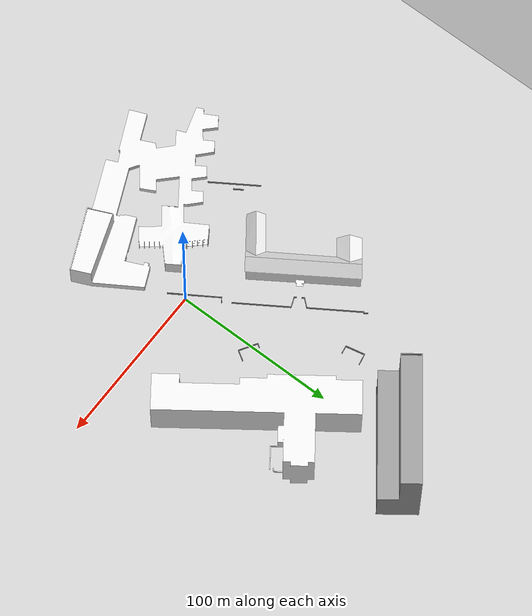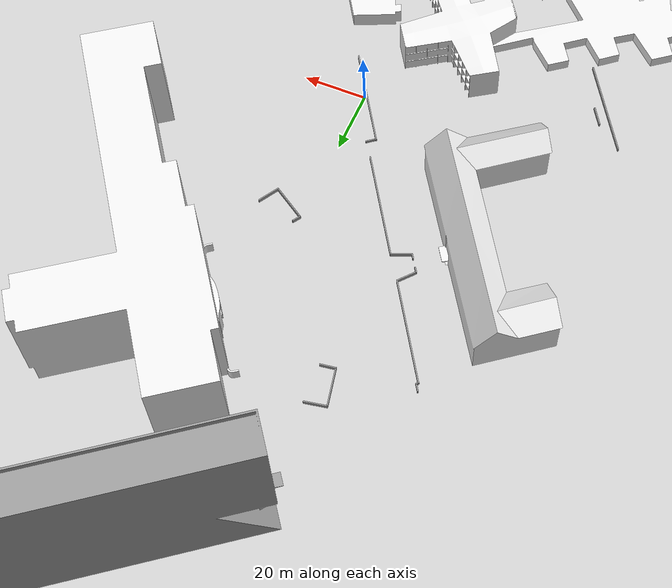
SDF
<sdf version="1.7">
 <world name="default">
  <gravity>0 0 -9.8</gravity>
  <magnetic_field>6e-06 2.3e-05 -4.2e-05</magnetic_field>
  <atmosphere type="adiabatic"/>
  <physics type="ode">
   <max_step_size>0.001</max_step_size>
   <real_time_factor>1</real_time_factor>
   <real_time_update_rate>1000</real_time_update_rate>
  </physics>
  <scene><ambient>0.4 0.4 0.4 1</ambient><background>0.7 0.7 0.7 1</background><shadows>1</shadows></scene>
  <spherical_coordinates>
   <surface_model>EARTH_WGS84</surface_model>
   <latitude_deg>0</latitude_deg>
   <longitude_deg>0</longitude_deg>
   <elevation>0</elevation>
   <heading_deg>0</heading_deg>
  </spherical_coordinates>
  <light name="sun" type="directional">
   <pose>0 0 10 0 -0 0</pose>
   <diffuse>0.8 0.8 0.8 1</diffuse>
   <specular>0.2 0.2 0.2 1</specular>
   <attenuation>
    <range>1000</range>
    <constant>0.9</constant>
    <linear>0.01</linear>
    <quadratic>0.001</quadratic>
   </attenuation>
   <direction>-0.5 0.1 -0.9</direction>
   <spot><inner_angle>0</inner_angle><outer_angle>0</outer_angle><falloff>0</falloff></spot>
  </light>
  <scene><shadows>0</shadows><ambient>0.4 0.4 0.4 1</ambient><background>0.7 0.7 0.7 1</background></scene>
  <model name="BT21">
   <link name="link_0">
    <inertial>
     <mass>1</mass>
     <inertia>
      <ixx>0.166667</ixx>
      <ixy>0</ixy>
      <ixz>0</ixz>
      <iyy>0.166667</iyy>
      <iyz>0</iyz>
      <izz>0.166667</izz>
     </inertia>
    </inertial>
    <pose>31.9855 76.1739 6.67521 0 0 -0.939198</pose>
    <visual name="visual">
     <geometry>
      <mesh>
       <uri>/home/ipp/ownCloud/Documents/Blindenhund 4.0/20_Entwicklung/90_Gazebo_Sim/BT21.dae</uri>
       <scale>1 1 1</scale>
      </mesh>
     </geometry>
     <material>
      <lighting>1</lighting>
      <script><uri>file://media/materials/scripts/gazebo.material</uri><name>Gazebo/White</name></script>
      <shader type="pixel"><normal_map>__default__</normal_map></shader>
      <ambient>1 1 1 1</ambient>
      <diffuse>0.7 0.7 0.7 1</diffuse>
      <specular>0.01 0.01 0.01 1</specular>
      <emissive>0 0 0 1</emissive>
     </material>
    </visual>
    <collision name="collision">
     <geometry>
      <mesh>
       <uri>/home/ipp/ownCloud/Documents/Blindenhund 4.0/20_Entwicklung/90_Gazebo_Sim/BT21.dae</uri>
       <scale>1 1 1</scale>
      </mesh>
     </geometry>
     <surface>
      <friction>
       <ode><mu>1</mu><mu2>1</mu2><fdir1>0 0 0</fdir1><slip1>0</slip1><slip2>0</slip2></ode>
       <torsional>
        <coefficient>1</coefficient>
        <patch_radius>0</patch_radius>
        <surface_radius>0</surface_radius>
        <use_patch_radius>1</use_patch_radius>
        <ode><slip>0</slip></ode>
       </torsional>
      </friction>
      <bounce><restitution_coefficient>0</restitution_coefficient><threshold>1e+06</threshold></bounce>
      <contact>
       <collide_without_contact>0</collide_without_contact>
       <collide_without_contact_bitmask>1</collide_without_contact_bitmask>
       <collide_bitmask>1</collide_bitmask>
       <ode>
        <soft_cfm>0</soft_cfm>
        <soft_erp>0.2</soft_erp>
        <kp>1e+13</kp>
        <kd>1</kd>
        <max_vel>0.01</max_vel>
        <min_depth>0</min_depth>
       </ode>
       <bullet>
        <split_impulse>1</split_impulse>
        <split_impulse_penetration_threshold>-0.01</split_impulse_penetration_threshold>
        <soft_cfm>0</soft_cfm>
        <soft_erp>0.2</soft_erp>
        <kp>1e+13</kp>
        <kd>1</kd>
       </bullet>
      </contact>
     </surface>
    </collision>
   </link>
   <static>1</static>
  </model>
  <model name="BT5">
   <link name="link_0">
    <inertial>
     <mass>1</mass>
     <inertia>
      <ixx>0.166667</ixx>
      <ixy>0</ixy>
      <ixz>0</ixz>
      <iyy>0.166667</iyy>
      <iyz>0</iyz>
      <izz>0.166667</izz>
     </inertia>
    </inertial>
    <visual name="visual">
     <geometry>
      <mesh>
       <uri>/home/ipp/ownCloud/Documents/Blindenhund 4.0/20_Entwicklung/90_Gazebo_Sim/BT5.dae</uri>
       <scale>1 1 1</scale>
      </mesh>
     </geometry>
     <material>
      <lighting>1</lighting>
      <script><uri>file://media/materials/scripts/gazebo.material</uri><name>Gazebo/Grey</name></script>
      <shader type="pixel"><normal_map>__default__</normal_map></shader>
      <ambient>1 1 1 1</ambient>
      <diffuse>0.7 0.7 0.7 1</diffuse>
      <specular>0.01 0.01 0.01 1</specular>
      <emissive>0 0 0 1</emissive>
     </material>
    </visual>
    <collision name="collision">
     <geometry>
      <mesh>
       <uri>/home/ipp/ownCloud/Documents/Blindenhund 4.0/20_Entwicklung/90_Gazebo_Sim/BT5.dae</uri>
       <scale>1 1 1</scale>
      </mesh>
     </geometry>
     <surface>
      <friction>
       <ode><mu>1</mu><mu2>1</mu2><fdir1>0 0 0</fdir1><slip1>0</slip1><slip2>0</slip2></ode>
       <torsional>
        <coefficient>1</coefficient>
        <patch_radius>0</patch_radius>
        <surface_radius>0</surface_radius>
        <use_patch_radius>1</use_patch_radius>
        <ode><slip>0</slip></ode>
       </torsional>
      </friction>
      <bounce><restitution_coefficient>0</restitution_coefficient><threshold>1e+06</threshold></bounce>
      <contact>
       <collide_without_contact>0</collide_without_contact>
       <collide_without_contact_bitmask>1</collide_without_contact_bitmask>
       <collide_bitmask>1</collide_bitmask>
       <ode>
        <soft_cfm>0</soft_cfm>
        <soft_erp>0.2</soft_erp>
        <kp>1e+13</kp>
        <kd>1</kd>
        <max_vel>0.01</max_vel>
        <min_depth>0</min_depth>
       </ode>
       <bullet>
        <split_impulse>1</split_impulse>
        <split_impulse_penetration_threshold>-0.01</split_impulse_penetration_threshold>
        <soft_cfm>0</soft_cfm>
        <soft_erp>0.2</soft_erp>
        <kp>1e+13</kp>
        <kd>1</kd>
       </bullet>
      </contact>
     </surface>
    </collision>
   </link>
   <static>1</static>
   <pose>1.17466 152.922 6.3166 0 0 -0.92925</pose>
  </model>
  <model name="WS3">
   <link name="link_1">
    <inertial>
     <mass>1</mass>
     <inertia>
      <ixx>0.166667</ixx>
      <ixy>0</ixy>
      <ixz>0</ixz>
      <iyy>0.166667</iyy>
      <iyz>0</iyz>
      <izz>0.166667</izz>
     </inertia>
    </inertial>
    <visual name="visual">
     <geometry>
      <mesh>
       <uri>/home/ipp/ownCloud/Documents/Blindenhund 4.0/20_Entwicklung/90_Gazebo_Sim/WS3.dae</uri>
       <scale>1 1 1</scale>
      </mesh>
     </geometry>
     <material>
      <lighting>1</lighting>
      <script><uri>file://media/materials/scripts/gazebo.material</uri><name>Gazebo/White</name></script>
      <shader type="pixel"><normal_map>__default__</normal_map></shader>
      <ambient>0.8 0.8 0.8 1</ambient>
      <diffuse>0.7 0.7 0.7 1</diffuse>
      <specular>0.01 0.01 0.01 1</specular>
      <emissive>0 0 0 1</emissive>
     </material>
    </visual>
    <collision name="collision">
     <geometry>
      <mesh>
       <uri>/home/ipp/ownCloud/Documents/Blindenhund 4.0/20_Entwicklung/90_Gazebo_Sim/WS3.dae</uri>
       <scale>1 1 1</scale>
      </mesh>
     </geometry>
     <surface>
      <friction>
       <ode><mu>1</mu><mu2>1</mu2><fdir1>0 0 0</fdir1><slip1>0</slip1><slip2>0</slip2></ode>
       <torsional>
        <coefficient>1</coefficient>
        <patch_radius>0</patch_radius>
        <surface_radius>0</surface_radius>
        <use_patch_radius>1</use_patch_radius>
        <ode><slip>0</slip></ode>
       </torsional>
      </friction>
      <bounce><restitution_coefficient>0</restitution_coefficient><threshold>1e+06</threshold></bounce>
      <contact>
       <collide_without_contact>0</collide_without_contact>
       <collide_without_contact_bitmask>1</collide_without_contact_bitmask>
       <collide_bitmask>1</collide_bitmask>
       <ode>
        <soft_cfm>0</soft_cfm>
        <soft_erp>0.2</soft_erp>
        <kp>1e+13</kp>
        <kd>1</kd>
        <max_vel>0.01</max_vel>
        <min_depth>0</min_depth>
       </ode>
       <bullet>
        <split_impulse>1</split_impulse>
        <split_impulse_penetration_threshold>-0.01</split_impulse_penetration_threshold>
        <soft_cfm>0</soft_cfm>
        <soft_erp>0.2</soft_erp>
        <kp>1e+13</kp>
        <kd>1</kd>
       </bullet>
      </contact>
     </surface>
    </collision>
   </link>
   <static>1</static>
   <pose>-61.679 38.3891 5.93679 0 -0 2.15838</pose>
  </model>
  <model name="ST69">
   <link name="link_0">
    <inertial>
     <mass>1</mass>
     <inertia>
      <ixx>0.166667</ixx>
      <ixy>0</ixy>
      <ixz>0</ixz>
      <iyy>0.166667</iyy>
      <iyz>0</iyz>
      <izz>0.166667</izz>
     </inertia>
    </inertial>
    <visual name="visual">
     <geometry>
      <mesh>
       <uri>/home/ipp/ownCloud/Documents/Blindenhund 4.0/20_Entwicklung/90_Gazebo_Sim/ST69.dae</uri>
       <scale>1 1 1</scale>
      </mesh>
     </geometry>
     <material>
      <lighting>1</lighting>
      <script><uri>file://media/materials/scripts/gazebo.material</uri><name>Gazebo/White</name></script>
      <shader type="pixel"><normal_map>__default__</normal_map></shader>
      <ambient>0.8 0.8 0.8 1</ambient>
      <diffuse>0.7 0.7 0.7 1</diffuse>
      <specular>0.01 0.01 0.01 1</specular>
      <emissive>0 0 0 1</emissive>
     </material>
    </visual>
    <collision name="collision">
     <geometry>
      <mesh>
       <uri>/home/ipp/ownCloud/Documents/Blindenhund 4.0/20_Entwicklung/90_Gazebo_Sim/ST69.dae</uri>
       <scale>1 1 1</scale>
      </mesh>
     </geometry>
     <surface>
      <friction>
       <ode><mu>1</mu><mu2>1</mu2><fdir1>0 0 0</fdir1><slip1>0</slip1><slip2>0</slip2></ode>
       <torsional>
        <coefficient>1</coefficient>
        <patch_radius>0</patch_radius>
        <surface_radius>0</surface_radius>
        <use_patch_radius>1</use_patch_radius>
        <ode><slip>0</slip></ode>
       </torsional>
      </friction>
      <bounce><restitution_coefficient>0</restitution_coefficient><threshold>1e+06</threshold></bounce>
      <contact>
       <collide_without_contact>0</collide_without_contact>
       <collide_without_contact_bitmask>1</collide_without_contact_bitmask>
       <collide_bitmask>1</collide_bitmask>
       <ode>
        <soft_cfm>0</soft_cfm>
        <soft_erp>0.2</soft_erp>
        <kp>1e+13</kp>
        <kd>1</kd>
        <max_vel>0.01</max_vel>
        <min_depth>0</min_depth>
       </ode>
       <bullet>
        <split_impulse>1</split_impulse>
        <split_impulse_penetration_threshold>-0.01</split_impulse_penetration_threshold>
        <soft_cfm>0</soft_cfm>
        <soft_erp>0.2</soft_erp>
        <kp>1e+13</kp>
        <kd>1</kd>
       </bullet>
      </contact>
     </surface>
    </collision>
   </link>
   <static>1</static>
   <pose>12.8381 -59.5983 7.23134 0 0 -1.14842</pose>
  </model>
  <model name="unit_box_clone">
   <static>1</static>
   <pose>-72.0603 -20.0587 7.25828 0 -0 0.577445</pose>
   <link name="link">
    <inertial>
     <mass>1</mass>
     <inertia>
      <ixx>0.166667</ixx>
      <ixy>0</ixy>
      <ixz>0</ixz>
      <iyy>0.166667</iyy>
      <iyz>0</iyz>
      <izz>0.166667</izz>
     </inertia>
    </inertial>
    <collision name="collision"><geometry><box><size>0.375505 31.014 1.61922</size></box></geometry></collision>
    <visual name="visual">
     <geometry><box><size>0.375505 31.014 1.61922</size></box></geometry>
     <material>
      <script><name>Gazebo/Grey</name><uri>file://media/materials/scripts/gazebo.material</uri></script>
     </material>
    </visual>
   </link>
  </model>
  <model name="unit_box_clone_clone">
   <static>1</static>
   <pose>-21.6994 38.4434 7.25828 0 -0 0.577445</pose>
   <link name="link">
    <inertial>
     <mass>1</mass>
     <inertia>
      <ixx>0.166667</ixx>
      <ixy>0</ixy>
      <ixz>0</ixz>
      <iyy>0.166667</iyy>
      <iyz>0</iyz>
      <izz>0.166667</izz>
     </inertia>
    </inertial>
    <collision name="collision"><geometry><box><size>0.375505 34.2302 1.61922</size></box></geometry></collision>
    <visual name="visual">
     <geometry><box><size>0.375505 34.2302 1.61922</size></box></geometry>
     <material>
      <script><name>Gazebo/Grey</name><uri>file://media/materials/scripts/gazebo.material</uri></script>
     </material>
    </visual>
   </link>
  </model>
  <model name="unit_box_clone_clone_0">
   <static>1</static>
   <pose>-44.9844 73.6828 7.25828 0 -0 0.577445</pose>
   <link name="link">
    <inertial>
     <mass>1</mass>
     <inertia>
      <ixx>0.166667</ixx>
      <ixy>0</ixy>
      <ixz>0</ixz>
      <iyy>0.166667</iyy>
      <iyz>0</iyz>
      <izz>0.166667</izz>
     </inertia>
    </inertial>
    <collision name="collision"><geometry><box><size>0.375505 32.8244 1.61922</size></box></geometry></collision>
    <visual name="visual">
     <geometry><box><size>0.375505 32.8244 1.61922</size></box></geometry>
     <material>
      <script><name>Gazebo/Grey</name><uri>file://media/materials/scripts/gazebo.material</uri></script>
     </material>
    </visual>
   </link>
  </model>
  <model name="unit_box_clone_clone_1">
   <static>1</static>
   <pose>-2.93976 4.36517 7.25828 -0.022688 -0 0.577445</pose>
   <link name="link">
    <inertial>
     <mass>1</mass>
     <inertia>
      <ixx>0.166667</ixx>
      <ixy>0</ixy>
      <ixz>0</ixz>
      <iyy>0.166667</iyy>
      <iyz>0</iyz>
      <izz>0.166667</izz>
     </inertia>
    </inertial>
    <collision name="collision"><geometry><box><size>0.375505 31.5521 1.61922</size></box></geometry></collision>
    <visual name="visual">
     <geometry><box><size>0.375505 31.5521 1.61922</size></box></geometry>
     <material>
      <script><name>Gazebo/Grey</name><uri>file://media/materials/scripts/gazebo.material</uri></script>
     </material>
    </visual>
   </link>
  </model>
  <model name="unit_box_clone_clone_2">
   <static>1</static>
   <pose>3.38974 48.2357 7.25828 0 -0 1.01238</pose>
   <link name="link">
    <inertial>
     <mass>1</mass>
     <inertia>
      <ixx>0.166667</ixx>
      <ixy>0</ixy>
      <ixz>0</ixz>
      <iyy>0.166667</iyy>
      <iyz>0</iyz>
      <izz>0.166667</izz>
     </inertia>
    </inertial>
    <collision name="collision"><geometry><box><size>0.375505 11.8547 1.61922</size></box></geometry></collision>
    <visual name="visual">
     <geometry><box><size>0.375505 11.8547 1.61922</size></box></geometry>
     <material>
      <script><name>Gazebo/Grey</name><uri>file://media/materials/scripts/gazebo.material</uri></script>
     </material>
    </visual>
   </link>
  </model>
  <model name="unit_box_clone_clone_1_clone_0">
   <static>1</static>
   <pose>-70.6809 -16.191 7.25828 0 -0 0.577445</pose>
   <link name="link">
    <inertial>
     <mass>1</mass>
     <inertia>
      <ixx>0.166667</ixx>
      <ixy>0</ixy>
      <ixz>0</ixz>
      <iyy>0.166667</iyy>
      <iyz>0</iyz>
      <izz>0.166667</izz>
     </inertia>
    </inertial>
    <collision name="collision"><geometry><box><size>0.375505 6.30522 1.61922</size></box></geometry></collision>
    <visual name="visual">
     <geometry><box><size>0.375505 6.30522 1.61922</size></box></geometry>
     <material>
      <script><name>Gazebo/Grey</name><uri>file://media/materials/scripts/gazebo.material</uri></script>
     </material>
    </visual>
   </link>
  </model>
  <model name="unit_box_clone_clone_1_clone_0_clone">
   <static>1</static>
   <pose>-54.1429 88.8989 7.25828 0 -0 0.577445</pose>
   <link name="link">
    <inertial>
     <mass>1</mass>
     <inertia>
      <ixx>0.166667</ixx>
      <ixy>0</ixy>
      <ixz>0</ixz>
      <iyy>0.166667</iyy>
      <iyz>0</iyz>
      <izz>0.166667</izz>
     </inertia>
    </inertial>
    <collision name="collision"><geometry><box><size>0.375505 2.36907 1.61922</size></box></geometry></collision>
    <visual name="visual">
     <geometry><box><size>0.375505 2.36907 1.61922</size></box></geometry>
     <material>
      <script><name>Gazebo/Grey</name><uri>file://media/materials/scripts/gazebo.material</uri></script>
     </material>
    </visual>
   </link>
  </model>
  <model name="unit_box_clone_clone_1_clone_0_clone_clone">
   <static>1</static>
   <pose>-53.7093 87.6734 7.25828 0 0 -0.769164</pose>
   <link name="link">
    <inertial>
     <mass>1</mass>
     <inertia>
      <ixx>0.166667</ixx>
      <ixy>0</ixy>
      <ixz>0</ixz>
      <iyy>0.166667</iyy>
      <iyz>0</iyz>
      <izz>0.166667</izz>
     </inertia>
    </inertial>
    <collision name="collision"><geometry><box><size>0.375505 1.04298 1.61922</size></box></geometry></collision>
    <visual name="visual">
     <geometry><box><size>0.375505 1.04298 1.61922</size></box></geometry>
     <material>
      <script><name>Gazebo/Grey</name><uri>file://media/materials/scripts/gazebo.material</uri></script>
     </material>
    </visual>
   </link>
  </model>
  <model name="unit_box_clone_clone_1_clone_0_clone_0">
   <static>1</static>
   <pose>-33.8551 51.5651 7.25828 0 -0 1.95079</pose>
   <link name="link">
    <inertial>
     <mass>1</mass>
     <inertia>
      <ixx>0.166667</ixx>
      <ixy>0</ixy>
      <ixz>0</ixz>
      <iyy>0.166667</iyy>
      <iyz>0</iyz>
      <izz>0.166667</izz>
     </inertia>
    </inertial>
    <collision name="collision"><geometry><box><size>0.375505 6.30522 1.61922</size></box></geometry></collision>
    <visual name="visual">
     <geometry><box><size>0.375505 6.30522 1.61922</size></box></geometry>
     <material>
      <script><name>Gazebo/Grey</name><uri>file://media/materials/scripts/gazebo.material</uri></script>
     </material>
    </visual>
   </link>
  </model>
  <model name="unit_box_clone_clone_1_clone_0_clone_1">
   <static>1</static>
   <pose>-38.0678 57.7768 7.25828 0 0 -0.713533</pose>
   <link name="link">
    <inertial>
     <mass>1</mass>
     <inertia>
      <ixx>0.166667</ixx>
      <ixy>0</ixy>
      <ixz>0</ixz>
      <iyy>0.166667</iyy>
      <iyz>0</iyz>
      <izz>0.166667</izz>
     </inertia>
    </inertial>
    <collision name="collision"><geometry><box><size>0.375505 6.30522 1.61922</size></box></geometry></collision>
    <visual name="visual">
     <geometry><box><size>0.375505 6.30522 1.61922</size></box></geometry>
     <material>
      <script><name>Gazebo/Grey</name><uri>file://media/materials/scripts/gazebo.material</uri></script>
     </material>
    </visual>
   </link>
  </model>
  <model name="unit_box_clone_clone_1_clone_0_clone_2">
   <static>1</static>
   <pose>-37.2325 50.9371 7.25828 0 -0 0.577445</pose>
   <link name="link">
    <inertial>
     <mass>1</mass>
     <inertia>
      <ixx>0.166667</ixx>
      <ixy>0</ixy>
      <ixz>0</ixz>
      <iyy>0.166667</iyy>
      <iyz>0</iyz>
      <izz>0.166667</izz>
     </inertia>
    </inertial>
    <collision name="collision"><geometry><box><size>0.375505 1.69334 1.61922</size></box></geometry></collision>
    <visual name="visual">
     <geometry><box><size>0.375505 1.69334 1.61922</size></box></geometry>
     <material>
      <script><name>Gazebo/Grey</name><uri>file://media/materials/scripts/gazebo.material</uri></script>
     </material>
    </visual>
   </link>
  </model>
  <model name="unit_box_clone_clone_1_clone_0_clone_3">
   <static>1</static>
   <pose>-39.7545 54.7807 7.25828 0 -0 0.577445</pose>
   <link name="link">
    <inertial>
     <mass>1</mass>
     <inertia>
      <ixx>0.166667</ixx>
      <ixy>0</ixy>
      <ixz>0</ixz>
      <iyy>0.166667</iyy>
      <iyz>0</iyz>
      <izz>0.166667</izz>
     </inertia>
    </inertial>
    <collision name="collision"><geometry><box><size>0.375505 1.7595 1.61922</size></box></geometry></collision>
    <visual name="visual">
     <geometry><box><size>0.375505 1.7595 1.61922</size></box></geometry>
     <material>
      <script><name>Gazebo/Grey</name><uri>file://media/materials/scripts/gazebo.material</uri></script>
     </material>
    </visual>
   </link>
  </model>
  <model name="unit_box_clone_clone_2_clone">
   <static>1</static>
   <pose>10.2227 47.9037 7.25828 0 0 -0.546523</pose>
   <link name="link">
    <inertial>
     <mass>1</mass>
     <inertia>
      <ixx>0.166667</ixx>
      <ixy>0</ixy>
      <ixz>0</ixz>
      <iyy>0.166667</iyy>
      <iyz>0</iyz>
      <izz>0.166667</izz>
     </inertia>
    </inertial>
    <collision name="collision"><geometry><box><size>0.375505 7.05883 1.61922</size></box></geometry></collision>
    <visual name="visual">
     <geometry><box><size>0.375505 7.05883 1.61922</size></box></geometry>
     <material>
      <script><name>Gazebo/Grey</name><uri>file://media/materials/scripts/gazebo.material</uri></script>
     </material>
    </visual>
   </link>
  </model>
  <model name="unit_box_clone_clone_2_clone_0">
   <static>1</static>
   <pose>-0.872592 52.3651 7.25828 0 0 -0.580673</pose>
   <link name="link">
    <inertial>
     <mass>1</mass>
     <inertia>
      <ixx>0.166667</ixx>
      <ixy>0</ixy>
      <ixz>0</ixz>
      <iyy>0.166667</iyy>
      <iyz>0</iyz>
      <izz>0.166667</izz>
     </inertia>
    </inertial>
    <collision name="collision"><geometry><box><size>0.375505 2.74338 1.61922</size></box></geometry></collision>
    <visual name="visual">
     <geometry><box><size>0.375505 2.74338 1.61922</size></box></geometry>
     <material>
      <script><name>Gazebo/Grey</name><uri>file://media/materials/scripts/gazebo.material</uri></script>
     </material>
    </visual>
   </link>
  </model>
  <model name="unit_box_clone_clone_2_clone_1">
   <static>1</static>
   <pose>-32.2435 97.7547 7.25828 0 -0 0.210662</pose>
   <link name="link">
    <inertial>
     <mass>1</mass>
     <inertia>
      <ixx>0.166667</ixx>
      <ixy>0</ixy>
      <ixz>0</ixz>
      <iyy>0.166667</iyy>
      <iyz>0</iyz>
      <izz>0.166667</izz>
     </inertia>
    </inertial>
    <collision name="collision"><geometry><box><size>0.375505 12.0485 1.61922</size></box></geometry></collision>
    <visual name="visual">
     <geometry><box><size>0.375505 12.0485 1.61922</size></box></geometry>
     <material>
      <script><name>Gazebo/Grey</name><uri>file://media/materials/scripts/gazebo.material</uri></script>
     </material>
    </visual>
   </link>
  </model>
  <model name="unit_box_clone_clone_2_clone_2">
   <static>1</static>
   <pose>-28.7493 92.3946 7.25828 0 -0 1.71978</pose>
   <link name="link">
    <inertial>
     <mass>1</mass>
     <inertia>
      <ixx>0.166667</ixx>
      <ixy>0</ixy>
      <ixz>0</ixz>
      <iyy>0.166667</iyy>
      <iyz>0</iyz>
      <izz>0.166667</izz>
     </inertia>
    </inertial>
    <collision name="collision"><geometry><box><size>0.375505 4.89105 1.61922</size></box></geometry></collision>
    <visual name="visual">
     <geometry><box><size>0.375505 4.89105 1.61922</size></box></geometry>
     <material>
      <script><name>Gazebo/Grey</name><uri>file://media/materials/scripts/gazebo.material</uri></script>
     </material>
    </visual>
   </link>
  </model>
  <model name="unit_box_clone_clone_2_clone_3">
   <static>1</static>
   <pose>-30.1835 104.093 7.25828 0 -0 1.75839</pose>
   <link name="link">
    <inertial>
     <mass>1</mass>
     <inertia>
      <ixx>0.166667</ixx>
      <ixy>0</ixy>
      <ixz>0</ixz>
      <iyy>0.166667</iyy>
      <iyz>0</iyz>
      <izz>0.166667</izz>
     </inertia>
    </inertial>
    <collision name="collision"><geometry><box><size>0.375505 7.00029 1.61922</size></box></geometry></collision>
    <visual name="visual">
     <geometry><box><size>0.375505 7.00029 1.61922</size></box></geometry>
     <material>
      <script><name>Gazebo/Grey</name><uri>file://media/materials/scripts/gazebo.material</uri></script>
     </material>
    </visual>
   </link>
  </model>
  <model name="unit_box_clone_clone_1_clone_0_clone_4">
   <static>1</static>
   <pose>-10.2212 18.3602 6.91371 0 0 -0.90792</pose>
   <link name="link">
    <inertial>
     <mass>1</mass>
     <inertia>
      <ixx>0.166667</ixx>
      <ixy>0</ixy>
      <ixz>0</ixz>
      <iyy>0.166667</iyy>
      <iyz>0</iyz>
      <izz>0.166667</izz>
     </inertia>
    </inertial>
    <collision name="collision"><geometry><box><size>0.375505 3.4666 1.61922</size></box></geometry></collision>
    <visual name="visual">
     <geometry><box><size>0.375505 3.4666 1.61922</size></box></geometry>
     <material>
      <script><name>Gazebo/Grey</name><uri>file://media/materials/scripts/gazebo.material</uri></script>
     </material>
    </visual>
   </link>
  </model>
  <model name="ground_plane">
   <static>1</static>
   <link name="link">
    <collision name="collision">
     <geometry><plane><normal>0 0 1</normal><size>100 100</size></plane></geometry>
     <surface><friction><ode><mu>100</mu><mu2>50</mu2></ode></friction></surface>
    </collision>
    <visual name="visual">
     <cast_shadows>0</cast_shadows>
     <geometry><plane><normal>0 0 1</normal><size>100 100</size></plane></geometry>
     <material>
      <script><uri>file://media/materials/scripts/gazebo.material</uri><name>Gazebo/Grey</name></script>
     </material>
    </visual>
   </link>
   <pose>-0.196775 0.581246 7 0 -0 0</pose>
  </model>
 </world>
</sdf>
